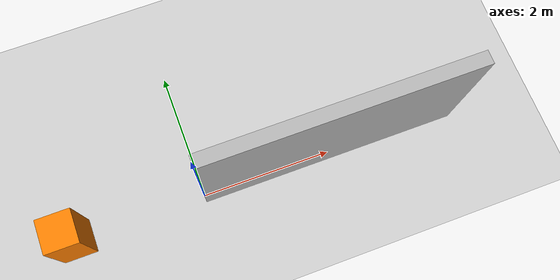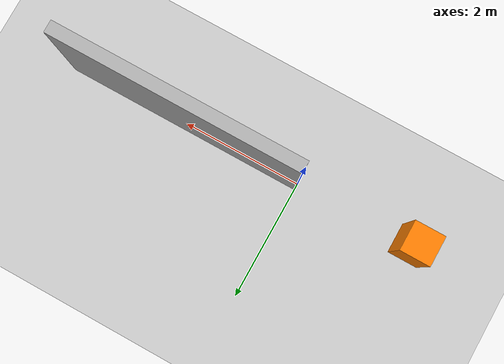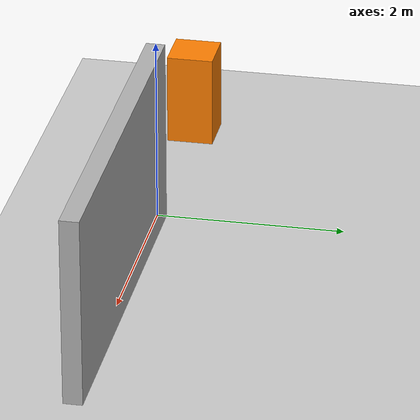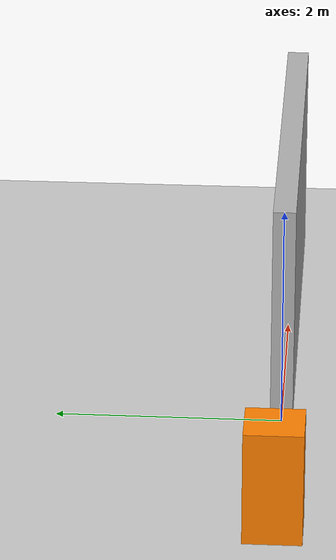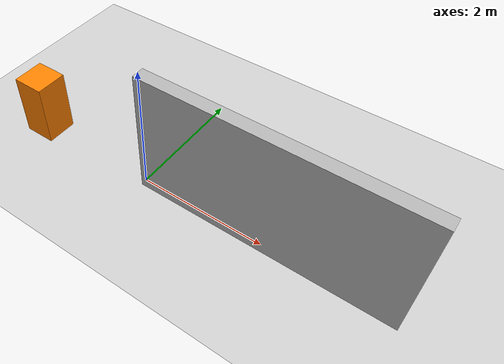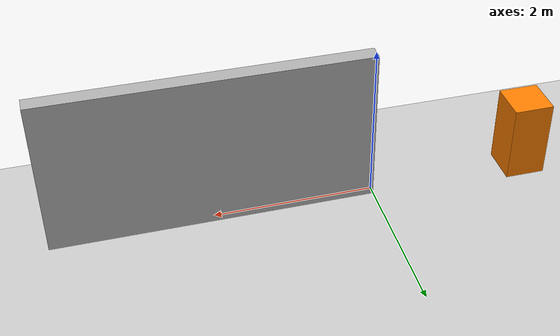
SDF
<?xml version="1.0" ?>
<sdf version="1.6">
  <world name="osiedle_world">
    <!-- Płaski teren -->
    <include>
      <uri>model://ground_plane</uri>
    </include>
    <!-- Światło słońca -->
    <include>
      <uri>model://sun</uri>
    </include>

    <!-- Prosty budynek (ściana) -->
    <model name="building_wall">
      <pose>2 0 1 0 0 0</pose>
      <link name="link">
        <collision name="collision">
          <geometry><box><size>4 0.2 2</size></box></geometry>
        </collision>
        <visual name="visual">
          <geometry><box><size>4 0.2 2</size></box></geometry>
          <material><ambient>0.7 0.7 0.7 1</ambient></material>
        </visual>
      </link>
    </model>

    <!-- Paczkomat jako blok -->
    <model name="paczkomat">
      <pose>-2 0 0.5 0 0 0</pose>
      <link name="link">
        <collision name="c">
          <geometry><box><size>0.5 0.5 1</size></box></geometry>
        </collision>
        <visual name="v">
          <geometry><box><size>0.5 0.5 1</size></box></geometry>
          <material><ambient>1 0.5 0 1</ambient></material>
        </visual>
      </link>
    </model>
  </world>
</sdf>
